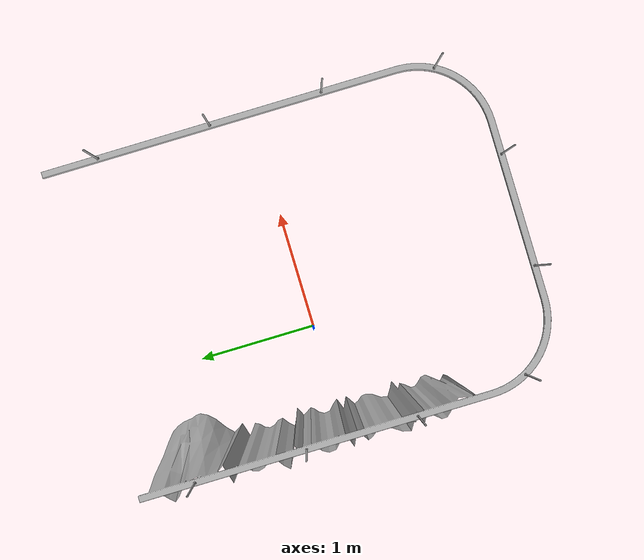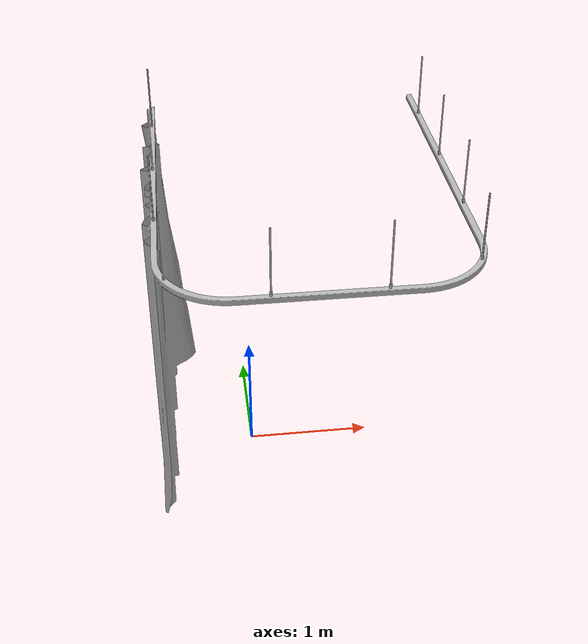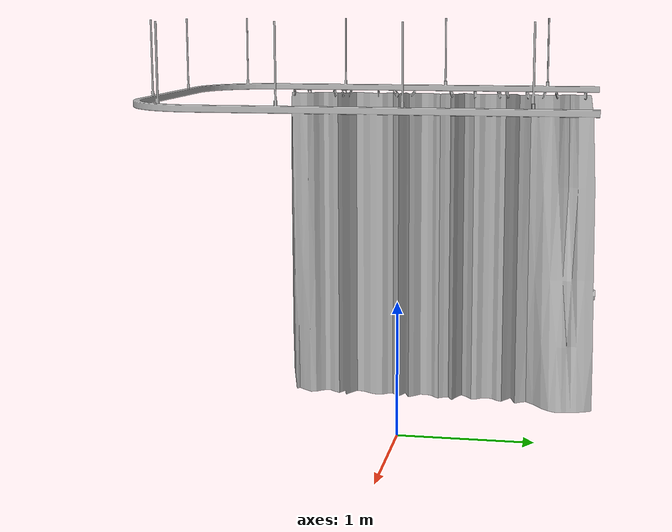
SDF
<?xml version="1.0" ?>
<sdf version="1.6">
  <model name="aws_robomaker_hospital_curtain_half_open_01">
    <link name="link">
      <visual name="visual">
        <geometry>
          <mesh>
            <uri>model://aws_robomaker_hospital_curtain_half_open_01/meshes/aws_robomaker_hospital_curtain_half_open_01_visual.dae</uri>
          </mesh>
        </geometry>
      </visual>
      <collision name="collision">
        <geometry>
          <mesh>
            <uri>model://aws_robomaker_hospital_curtain_half_open_01/meshes/aws_robomaker_hospital_curtain_half_open_01_collision.dae</uri>
          </mesh>
        </geometry>
      </collision>
    </link>
    <static>1</static>
  </model>
</sdf>
